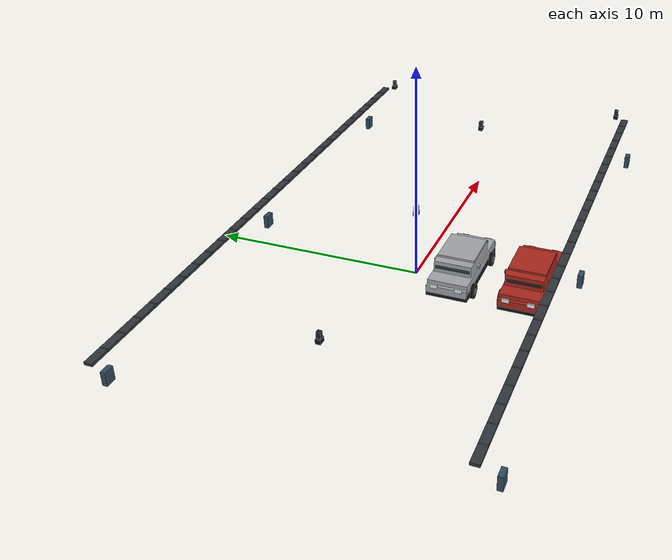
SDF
<sdf version="1.7">
 <world name="ev_car_carrier_deck_world">
  <model name="electrical_and_monitoring">
   <static>true</static>
   <link name="link">
    <collision name="cable_tray_-7.0_collision">
     <pose>0.0000 -7.0000 3.0500 0.0000 0.0000 0.0000</pose>
     <geometry><box><size>27.8 0.35 0.12</size></box></geometry>
    </collision>
    <visual name="cable_tray_-7.0_visual">
     <pose>0.0000 -7.0000 3.0500 0.0000 0.0000 0.0000</pose>
     <geometry><box><size>27.8 0.35 0.12</size></box></geometry>
     <material><ambient>0.2 0.22 0.24 1</ambient><diffuse>0.2 0.22 0.24 1</diffuse></material>
    </visual>
    <visual name="tray_rung_-7.0_-13_visual">
     <pose>-13.0000 -7.0000 3.1200 0.0000 0.0000 0.0000</pose>
     <geometry><box><size>0.035 0.33 0.04</size></box></geometry>
     <material><ambient>0.42 0.44 0.46 1</ambient><diffuse>0.42 0.44 0.46 1</diffuse></material>
    </visual>
    <visual name="tray_rung_-7.0_-12_visual">
     <pose>-12.0000 -7.0000 3.1200 0.0000 0.0000 0.0000</pose>
     <geometry><box><size>0.035 0.33 0.04</size></box></geometry>
     <material><ambient>0.42 0.44 0.46 1</ambient><diffuse>0.42 0.44 0.46 1</diffuse></material>
    </visual>
    <visual name="tray_rung_-7.0_-11_visual">
     <pose>-11.0000 -7.0000 3.1200 0.0000 0.0000 0.0000</pose>
     <geometry><box><size>0.035 0.33 0.04</size></box></geometry>
     <material><ambient>0.42 0.44 0.46 1</ambient><diffuse>0.42 0.44 0.46 1</diffuse></material>
    </visual>
    <visual name="tray_rung_-7.0_-10_visual">
     <pose>-10.0000 -7.0000 3.1200 0.0000 0.0000 0.0000</pose>
     <geometry><box><size>0.035 0.33 0.04</size></box></geometry>
     <material><ambient>0.42 0.44 0.46 1</ambient><diffuse>0.42 0.44 0.46 1</diffuse></material>
    </visual>
    <visual name="tray_rung_-7.0_-9_visual">
     <pose>-9.0000 -7.0000 3.1200 0.0000 0.0000 0.0000</pose>
     <geometry><box><size>0.035 0.33 0.04</size></box></geometry>
     <material><ambient>0.42 0.44 0.46 1</ambient><diffuse>0.42 0.44 0.46 1</diffuse></material>
    </visual>
    <visual name="tray_rung_-7.0_-8_visual">
     <pose>-8.0000 -7.0000 3.1200 0.0000 0.0000 0.0000</pose>
     <geometry><box><size>0.035 0.33 0.04</size></box></geometry>
     <material><ambient>0.42 0.44 0.46 1</ambient><diffuse>0.42 0.44 0.46 1</diffuse></material>
    </visual>
    <visual name="tray_rung_-7.0_-7_visual">
     <pose>-7.0000 -7.0000 3.1200 0.0000 0.0000 0.0000</pose>
     <geometry><box><size>0.035 0.33 0.04</size></box></geometry>
     <material><ambient>0.42 0.44 0.46 1</ambient><diffuse>0.42 0.44 0.46 1</diffuse></material>
    </visual>
    <visual name="tray_rung_-7.0_-6_visual">
     <pose>-6.0000 -7.0000 3.1200 0.0000 0.0000 0.0000</pose>
     <geometry><box><size>0.035 0.33 0.04</size></box></geometry>
     <material><ambient>0.42 0.44 0.46 1</ambient><diffuse>0.42 0.44 0.46 1</diffuse></material>
    </visual>
    <visual name="tray_rung_-7.0_-5_visual">
     <pose>-5.0000 -7.0000 3.1200 0.0000 0.0000 0.0000</pose>
     <geometry><box><size>0.035 0.33 0.04</size></box></geometry>
     <material><ambient>0.42 0.44 0.46 1</ambient><diffuse>0.42 0.44 0.46 1</diffuse></material>
    </visual>
    <visual name="tray_rung_-7.0_-4_visual">
     <pose>-4.0000 -7.0000 3.1200 0.0000 0.0000 0.0000</pose>
     <geometry><box><size>0.035 0.33 0.04</size></box></geometry>
     <material><ambient>0.42 0.44 0.46 1</ambient><diffuse>0.42 0.44 0.46 1</diffuse></material>
    </visual>
    <visual name="tray_rung_-7.0_-3_visual">
     <pose>-3.0000 -7.0000 3.1200 0.0000 0.0000 0.0000</pose>
     <geometry><box><size>0.035 0.33 0.04</size></box></geometry>
     <material><ambient>0.42 0.44 0.46 1</ambient><diffuse>0.42 0.44 0.46 1</diffuse></material>
    </visual>
    <visual name="tray_rung_-7.0_-2_visual">
     <pose>-2.0000 -7.0000 3.1200 0.0000 0.0000 0.0000</pose>
     <geometry><box><size>0.035 0.33 0.04</size></box></geometry>
     <material><ambient>0.42 0.44 0.46 1</ambient><diffuse>0.42 0.44 0.46 1</diffuse></material>
    </visual>
    <visual name="tray_rung_-7.0_-1_visual">
     <pose>-1.0000 -7.0000 3.1200 0.0000 0.0000 0.0000</pose>
     <geometry><box><size>0.035 0.33 0.04</size></box></geometry>
     <material><ambient>0.42 0.44 0.46 1</ambient><diffuse>0.42 0.44 0.46 1</diffuse></material>
    </visual>
    <visual name="tray_rung_-7.0_0_visual">
     <pose>0.0000 -7.0000 3.1200 0.0000 0.0000 0.0000</pose>
     <geometry><box><size>0.035 0.33 0.04</size></box></geometry>
     <material><ambient>0.42 0.44 0.46 1</ambient><diffuse>0.42 0.44 0.46 1</diffuse></material>
    </visual>
    <visual name="tray_rung_-7.0_1_visual">
     <pose>1.0000 -7.0000 3.1200 0.0000 0.0000 0.0000</pose>
     <geometry><box><size>0.035 0.33 0.04</size></box></geometry>
     <material><ambient>0.42 0.44 0.46 1</ambient><diffuse>0.42 0.44 0.46 1</diffuse></material>
    </visual>
    <visual name="tray_rung_-7.0_2_visual">
     <pose>2.0000 -7.0000 3.1200 0.0000 0.0000 0.0000</pose>
     <geometry><box><size>0.035 0.33 0.04</size></box></geometry>
     <material><ambient>0.42 0.44 0.46 1</ambient><diffuse>0.42 0.44 0.46 1</diffuse></material>
    </visual>
    <visual name="tray_rung_-7.0_3_visual">
     <pose>3.0000 -7.0000 3.1200 0.0000 0.0000 0.0000</pose>
     <geometry><box><size>0.035 0.33 0.04</size></box></geometry>
     <material><ambient>0.42 0.44 0.46 1</ambient><diffuse>0.42 0.44 0.46 1</diffuse></material>
    </visual>
    <visual name="tray_rung_-7.0_4_visual">
     <pose>4.0000 -7.0000 3.1200 0.0000 0.0000 0.0000</pose>
     <geometry><box><size>0.035 0.33 0.04</size></box></geometry>
     <material><ambient>0.42 0.44 0.46 1</ambient><diffuse>0.42 0.44 0.46 1</diffuse></material>
    </visual>
    <visual name="tray_rung_-7.0_5_visual">
     <pose>5.0000 -7.0000 3.1200 0.0000 0.0000 0.0000</pose>
     <geometry><box><size>0.035 0.33 0.04</size></box></geometry>
     <material><ambient>0.42 0.44 0.46 1</ambient><diffuse>0.42 0.44 0.46 1</diffuse></material>
    </visual>
    <visual name="tray_rung_-7.0_6_visual">
     <pose>6.0000 -7.0000 3.1200 0.0000 0.0000 0.0000</pose>
     <geometry><box><size>0.035 0.33 0.04</size></box></geometry>
     <material><ambient>0.42 0.44 0.46 1</ambient><diffuse>0.42 0.44 0.46 1</diffuse></material>
    </visual>
    <visual name="tray_rung_-7.0_7_visual">
     <pose>7.0000 -7.0000 3.1200 0.0000 0.0000 0.0000</pose>
     <geometry><box><size>0.035 0.33 0.04</size></box></geometry>
     <material><ambient>0.42 0.44 0.46 1</ambient><diffuse>0.42 0.44 0.46 1</diffuse></material>
    </visual>
    <visual name="tray_rung_-7.0_8_visual">
     <pose>8.0000 -7.0000 3.1200 0.0000 0.0000 0.0000</pose>
     <geometry><box><size>0.035 0.33 0.04</size></box></geometry>
     <material><ambient>0.42 0.44 0.46 1</ambient><diffuse>0.42 0.44 0.46 1</diffuse></material>
    </visual>
    <visual name="tray_rung_-7.0_9_visual">
     <pose>9.0000 -7.0000 3.1200 0.0000 0.0000 0.0000</pose>
     <geometry><box><size>0.035 0.33 0.04</size></box></geometry>
     <material><ambient>0.42 0.44 0.46 1</ambient><diffuse>0.42 0.44 0.46 1</diffuse></material>
    </visual>
    <visual name="tray_rung_-7.0_10_visual">
     <pose>10.0000 -7.0000 3.1200 0.0000 0.0000 0.0000</pose>
     <geometry><box><size>0.035 0.33 0.04</size></box></geometry>
     <material><ambient>0.42 0.44 0.46 1</ambient><diffuse>0.42 0.44 0.46 1</diffuse></material>
    </visual>
    <visual name="tray_rung_-7.0_11_visual">
     <pose>11.0000 -7.0000 3.1200 0.0000 0.0000 0.0000</pose>
     <geometry><box><size>0.035 0.33 0.04</size></box></geometry>
     <material><ambient>0.42 0.44 0.46 1</ambient><diffuse>0.42 0.44 0.46 1</diffuse></material>
    </visual>
    <visual name="tray_rung_-7.0_12_visual">
     <pose>12.0000 -7.0000 3.1200 0.0000 0.0000 0.0000</pose>
     <geometry><box><size>0.035 0.33 0.04</size></box></geometry>
     <material><ambient>0.42 0.44 0.46 1</ambient><diffuse>0.42 0.44 0.46 1</diffuse></material>
    </visual>
    <visual name="tray_rung_-7.0_13_visual">
     <pose>13.0000 -7.0000 3.1200 0.0000 0.0000 0.0000</pose>
     <geometry><box><size>0.035 0.33 0.04</size></box></geometry>
     <material><ambient>0.42 0.44 0.46 1</ambient><diffuse>0.42 0.44 0.46 1</diffuse></material>
    </visual>
    <collision name="cable_tray_7.0_collision">
     <pose>0.0000 7.0000 3.0500 0.0000 0.0000 0.0000</pose>
     <geometry><box><size>27.8 0.35 0.12</size></box></geometry>
    </collision>
    <visual name="cable_tray_7.0_visual">
     <pose>0.0000 7.0000 3.0500 0.0000 0.0000 0.0000</pose>
     <geometry><box><size>27.8 0.35 0.12</size></box></geometry>
     <material><ambient>0.2 0.22 0.24 1</ambient><diffuse>0.2 0.22 0.24 1</diffuse></material>
    </visual>
    <visual name="tray_rung_7.0_-13_visual">
     <pose>-13.0000 7.0000 3.1200 0.0000 0.0000 0.0000</pose>
     <geometry><box><size>0.035 0.33 0.04</size></box></geometry>
     <material><ambient>0.42 0.44 0.46 1</ambient><diffuse>0.42 0.44 0.46 1</diffuse></material>
    </visual>
    <visual name="tray_rung_7.0_-12_visual">
     <pose>-12.0000 7.0000 3.1200 0.0000 0.0000 0.0000</pose>
     <geometry><box><size>0.035 0.33 0.04</size></box></geometry>
     <material><ambient>0.42 0.44 0.46 1</ambient><diffuse>0.42 0.44 0.46 1</diffuse></material>
    </visual>
    <visual name="tray_rung_7.0_-11_visual">
     <pose>-11.0000 7.0000 3.1200 0.0000 0.0000 0.0000</pose>
     <geometry><box><size>0.035 0.33 0.04</size></box></geometry>
     <material><ambient>0.42 0.44 0.46 1</ambient><diffuse>0.42 0.44 0.46 1</diffuse></material>
    </visual>
    <visual name="tray_rung_7.0_-10_visual">
     <pose>-10.0000 7.0000 3.1200 0.0000 0.0000 0.0000</pose>
     <geometry><box><size>0.035 0.33 0.04</size></box></geometry>
     <material><ambient>0.42 0.44 0.46 1</ambient><diffuse>0.42 0.44 0.46 1</diffuse></material>
    </visual>
    <visual name="tray_rung_7.0_-9_visual">
     <pose>-9.0000 7.0000 3.1200 0.0000 0.0000 0.0000</pose>
     <geometry><box><size>0.035 0.33 0.04</size></box></geometry>
     <material><ambient>0.42 0.44 0.46 1</ambient><diffuse>0.42 0.44 0.46 1</diffuse></material>
    </visual>
    <visual name="tray_rung_7.0_-8_visual">
     <pose>-8.0000 7.0000 3.1200 0.0000 0.0000 0.0000</pose>
     <geometry><box><size>0.035 0.33 0.04</size></box></geometry>
     <material><ambient>0.42 0.44 0.46 1</ambient><diffuse>0.42 0.44 0.46 1</diffuse></material>
    </visual>
    <visual name="tray_rung_7.0_-7_visual">
     <pose>-7.0000 7.0000 3.1200 0.0000 0.0000 0.0000</pose>
     <geometry><box><size>0.035 0.33 0.04</size></box></geometry>
     <material><ambient>0.42 0.44 0.46 1</ambient><diffuse>0.42 0.44 0.46 1</diffuse></material>
    </visual>
    <visual name="tray_rung_7.0_-6_visual">
     <pose>-6.0000 7.0000 3.1200 0.0000 0.0000 0.0000</pose>
     <geometry><box><size>0.035 0.33 0.04</size></box></geometry>
     <material><ambient>0.42 0.44 0.46 1</ambient><diffuse>0.42 0.44 0.46 1</diffuse></material>
    </visual>
    <visual name="tray_rung_7.0_-5_visual">
     <pose>-5.0000 7.0000 3.1200 0.0000 0.0000 0.0000</pose>
     <geometry><box><size>0.035 0.33 0.04</size></box></geometry>
     <material><ambient>0.42 0.44 0.46 1</ambient><diffuse>0.42 0.44 0.46 1</diffuse></material>
    </visual>
    <visual name="tray_rung_7.0_-4_visual">
     <pose>-4.0000 7.0000 3.1200 0.0000 0.0000 0.0000</pose>
     <geometry><box><size>0.035 0.33 0.04</size></box></geometry>
     <material><ambient>0.42 0.44 0.46 1</ambient><diffuse>0.42 0.44 0.46 1</diffuse></material>
    </visual>
    <visual name="tray_rung_7.0_-3_visual">
     <pose>-3.0000 7.0000 3.1200 0.0000 0.0000 0.0000</pose>
     <geometry><box><size>0.035 0.33 0.04</size></box></geometry>
     <material><ambient>0.42 0.44 0.46 1</ambient><diffuse>0.42 0.44 0.46 1</diffuse></material>
    </visual>
    <visual name="tray_rung_7.0_-2_visual">
     <pose>-2.0000 7.0000 3.1200 0.0000 0.0000 0.0000</pose>
     <geometry><box><size>0.035 0.33 0.04</size></box></geometry>
     <material><ambient>0.42 0.44 0.46 1</ambient><diffuse>0.42 0.44 0.46 1</diffuse></material>
    </visual>
    <visual name="tray_rung_7.0_-1_visual">
     <pose>-1.0000 7.0000 3.1200 0.0000 0.0000 0.0000</pose>
     <geometry><box><size>0.035 0.33 0.04</size></box></geometry>
     <material><ambient>0.42 0.44 0.46 1</ambient><diffuse>0.42 0.44 0.46 1</diffuse></material>
    </visual>
    <visual name="tray_rung_7.0_0_visual">
     <pose>0.0000 7.0000 3.1200 0.0000 0.0000 0.0000</pose>
     <geometry><box><size>0.035 0.33 0.04</size></box></geometry>
     <material><ambient>0.42 0.44 0.46 1</ambient><diffuse>0.42 0.44 0.46 1</diffuse></material>
    </visual>
    <visual name="tray_rung_7.0_1_visual">
     <pose>1.0000 7.0000 3.1200 0.0000 0.0000 0.0000</pose>
     <geometry><box><size>0.035 0.33 0.04</size></box></geometry>
     <material><ambient>0.42 0.44 0.46 1</ambient><diffuse>0.42 0.44 0.46 1</diffuse></material>
    </visual>
    <visual name="tray_rung_7.0_2_visual">
     <pose>2.0000 7.0000 3.1200 0.0000 0.0000 0.0000</pose>
     <geometry><box><size>0.035 0.33 0.04</size></box></geometry>
     <material><ambient>0.42 0.44 0.46 1</ambient><diffuse>0.42 0.44 0.46 1</diffuse></material>
    </visual>
    <visual name="tray_rung_7.0_3_visual">
     <pose>3.0000 7.0000 3.1200 0.0000 0.0000 0.0000</pose>
     <geometry><box><size>0.035 0.33 0.04</size></box></geometry>
     <material><ambient>0.42 0.44 0.46 1</ambient><diffuse>0.42 0.44 0.46 1</diffuse></material>
    </visual>
    <visual name="tray_rung_7.0_4_visual">
     <pose>4.0000 7.0000 3.1200 0.0000 0.0000 0.0000</pose>
     <geometry><box><size>0.035 0.33 0.04</size></box></geometry>
     <material><ambient>0.42 0.44 0.46 1</ambient><diffuse>0.42 0.44 0.46 1</diffuse></material>
    </visual>
    <visual name="tray_rung_7.0_5_visual">
     <pose>5.0000 7.0000 3.1200 0.0000 0.0000 0.0000</pose>
     <geometry><box><size>0.035 0.33 0.04</size></box></geometry>
     <material><ambient>0.42 0.44 0.46 1</ambient><diffuse>0.42 0.44 0.46 1</diffuse></material>
    </visual>
    <visual name="tray_rung_7.0_6_visual">
     <pose>6.0000 7.0000 3.1200 0.0000 0.0000 0.0000</pose>
     <geometry><box><size>0.035 0.33 0.04</size></box></geometry>
     <material><ambient>0.42 0.44 0.46 1</ambient><diffuse>0.42 0.44 0.46 1</diffuse></material>
    </visual>
    <visual name="tray_rung_7.0_7_visual">
     <pose>7.0000 7.0000 3.1200 0.0000 0.0000 0.0000</pose>
     <geometry><box><size>0.035 0.33 0.04</size></box></geometry>
     <material><ambient>0.42 0.44 0.46 1</ambient><diffuse>0.42 0.44 0.46 1</diffuse></material>
    </visual>
    <visual name="tray_rung_7.0_8_visual">
     <pose>8.0000 7.0000 3.1200 0.0000 0.0000 0.0000</pose>
     <geometry><box><size>0.035 0.33 0.04</size></box></geometry>
     <material><ambient>0.42 0.44 0.46 1</ambient><diffuse>0.42 0.44 0.46 1</diffuse></material>
    </visual>
    <visual name="tray_rung_7.0_9_visual">
     <pose>9.0000 7.0000 3.1200 0.0000 0.0000 0.0000</pose>
     <geometry><box><size>0.035 0.33 0.04</size></box></geometry>
     <material><ambient>0.42 0.44 0.46 1</ambient><diffuse>0.42 0.44 0.46 1</diffuse></material>
    </visual>
    <visual name="tray_rung_7.0_10_visual">
     <pose>10.0000 7.0000 3.1200 0.0000 0.0000 0.0000</pose>
     <geometry><box><size>0.035 0.33 0.04</size></box></geometry>
     <material><ambient>0.42 0.44 0.46 1</ambient><diffuse>0.42 0.44 0.46 1</diffuse></material>
    </visual>
    <visual name="tray_rung_7.0_11_visual">
     <pose>11.0000 7.0000 3.1200 0.0000 0.0000 0.0000</pose>
     <geometry><box><size>0.035 0.33 0.04</size></box></geometry>
     <material><ambient>0.42 0.44 0.46 1</ambient><diffuse>0.42 0.44 0.46 1</diffuse></material>
    </visual>
    <visual name="tray_rung_7.0_12_visual">
     <pose>12.0000 7.0000 3.1200 0.0000 0.0000 0.0000</pose>
     <geometry><box><size>0.035 0.33 0.04</size></box></geometry>
     <material><ambient>0.42 0.44 0.46 1</ambient><diffuse>0.42 0.44 0.46 1</diffuse></material>
    </visual>
    <visual name="tray_rung_7.0_13_visual">
     <pose>13.0000 7.0000 3.1200 0.0000 0.0000 0.0000</pose>
     <geometry><box><size>0.035 0.33 0.04</size></box></geometry>
     <material><ambient>0.42 0.44 0.46 1</ambient><diffuse>0.42 0.44 0.46 1</diffuse></material>
    </visual>
    <collision name="junction_box_-12.5_7.55_collision">
     <pose>-12.5000 7.5500 1.3500 0.0000 0.0000 0.0000</pose>
     <geometry><box><size>0.48 0.22 0.62</size></box></geometry>
    </collision>
    <visual name="junction_box_-12.5_7.55_visual">
     <pose>-12.5000 7.5500 1.3500 0.0000 0.0000 0.0000</pose>
     <geometry><box><size>0.48 0.22 0.62</size></box></geometry>
     <material><ambient>0.2 0.3 0.38 1</ambient><diffuse>0.2 0.3 0.38 1</diffuse></material>
    </visual>
    <collision name="junction_box_0_7.55_collision">
     <pose>0.0000 7.5500 1.3500 0.0000 0.0000 0.0000</pose>
     <geometry><box><size>0.48 0.22 0.62</size></box></geometry>
    </collision>
    <visual name="junction_box_0_7.55_visual">
     <pose>0.0000 7.5500 1.3500 0.0000 0.0000 0.0000</pose>
     <geometry><box><size>0.48 0.22 0.62</size></box></geometry>
     <material><ambient>0.2 0.3 0.38 1</ambient><diffuse>0.2 0.3 0.38 1</diffuse></material>
    </visual>
    <collision name="junction_box_12.5_7.55_collision">
     <pose>12.5000 7.5500 1.3500 0.0000 0.0000 0.0000</pose>
     <geometry><box><size>0.48 0.22 0.62</size></box></geometry>
    </collision>
    <visual name="junction_box_12.5_7.55_visual">
     <pose>12.5000 7.5500 1.3500 0.0000 0.0000 0.0000</pose>
     <geometry><box><size>0.48 0.22 0.62</size></box></geometry>
     <material><ambient>0.2 0.3 0.38 1</ambient><diffuse>0.2 0.3 0.38 1</diffuse></material>
    </visual>
    <collision name="junction_box_-12.5_-7.55_collision">
     <pose>-12.5000 -7.5500 1.3500 0.0000 0.0000 0.0000</pose>
     <geometry><box><size>0.48 0.22 0.62</size></box></geometry>
    </collision>
    <visual name="junction_box_-12.5_-7.55_visual">
     <pose>-12.5000 -7.5500 1.3500 0.0000 0.0000 0.0000</pose>
     <geometry><box><size>0.48 0.22 0.62</size></box></geometry>
     <material><ambient>0.2 0.3 0.38 1</ambient><diffuse>0.2 0.3 0.38 1</diffuse></material>
    </visual>
    <collision name="junction_box_0_-7.55_collision">
     <pose>0.0000 -7.5500 1.3500 0.0000 0.0000 0.0000</pose>
     <geometry><box><size>0.48 0.22 0.62</size></box></geometry>
    </collision>
    <visual name="junction_box_0_-7.55_visual">
     <pose>0.0000 -7.5500 1.3500 0.0000 0.0000 0.0000</pose>
     <geometry><box><size>0.48 0.22 0.62</size></box></geometry>
     <material><ambient>0.2 0.3 0.38 1</ambient><diffuse>0.2 0.3 0.38 1</diffuse></material>
    </visual>
    <collision name="junction_box_12.5_-7.55_collision">
     <pose>12.5000 -7.5500 1.3500 0.0000 0.0000 0.0000</pose>
     <geometry><box><size>0.48 0.22 0.62</size></box></geometry>
    </collision>
    <visual name="junction_box_12.5_-7.55_visual">
     <pose>12.5000 -7.5500 1.3500 0.0000 0.0000 0.0000</pose>
     <geometry><box><size>0.48 0.22 0.62</size></box></geometry>
     <material><ambient>0.2 0.3 0.38 1</ambient><diffuse>0.2 0.3 0.38 1</diffuse></material>
    </visual>
    <collision name="camera_mount_0_collision">
     <pose>-10.0000 0.0000 3.3800 0.0000 0.0000 0.0000</pose>
     <geometry><box><size>0.18 0.18 0.35</size></box></geometry>
    </collision>
    <visual name="camera_mount_0_visual">
     <pose>-10.0000 0.0000 3.3800 0.0000 0.0000 0.0000</pose>
     <geometry><box><size>0.18 0.18 0.35</size></box></geometry>
     <material><ambient>0.12 0.13 0.15 1</ambient><diffuse>0.12 0.13 0.15 1</diffuse></material>
    </visual>
    <collision name="camera_head_0_collision">
     <pose>-10.0000 0.0000 3.1800 0.0000 0.0000 0.0000</pose>
     <geometry><box><size>0.3 0.22 0.2</size></box></geometry>
    </collision>
    <visual name="camera_head_0_visual">
     <pose>-10.0000 0.0000 3.1800 0.0000 0.0000 0.0000</pose>
     <geometry><box><size>0.3 0.22 0.2</size></box></geometry>
     <material><ambient>0.06 0.07 0.08 1</ambient><diffuse>0.06 0.07 0.08 1</diffuse></material>
    </visual>
    <collision name="camera_mount_1_collision">
     <pose>0.0000 0.0000 3.3800 0.0000 0.0000 0.0000</pose>
     <geometry><box><size>0.18 0.18 0.35</size></box></geometry>
    </collision>
    <visual name="camera_mount_1_visual">
     <pose>0.0000 0.0000 3.3800 0.0000 0.0000 0.0000</pose>
     <geometry><box><size>0.18 0.18 0.35</size></box></geometry>
     <material><ambient>0.12 0.13 0.15 1</ambient><diffuse>0.12 0.13 0.15 1</diffuse></material>
    </visual>
    <collision name="camera_head_1_collision">
     <pose>0.0000 0.0000 3.1800 0.0000 0.0000 0.0000</pose>
     <geometry><box><size>0.3 0.22 0.2</size></box></geometry>
    </collision>
    <visual name="camera_head_1_visual">
     <pose>0.0000 0.0000 3.1800 0.0000 0.0000 0.0000</pose>
     <geometry><box><size>0.3 0.22 0.2</size></box></geometry>
     <material><ambient>0.06 0.07 0.08 1</ambient><diffuse>0.06 0.07 0.08 1</diffuse></material>
    </visual>
    <collision name="camera_mount_2_collision">
     <pose>10.0000 0.0000 3.3800 0.0000 0.0000 0.0000</pose>
     <geometry><box><size>0.18 0.18 0.35</size></box></geometry>
    </collision>
    <visual name="camera_mount_2_visual">
     <pose>10.0000 0.0000 3.3800 0.0000 0.0000 0.0000</pose>
     <geometry><box><size>0.18 0.18 0.35</size></box></geometry>
     <material><ambient>0.12 0.13 0.15 1</ambient><diffuse>0.12 0.13 0.15 1</diffuse></material>
    </visual>
    <collision name="camera_head_2_collision">
     <pose>10.0000 0.0000 3.1800 0.0000 0.0000 3.1416</pose>
     <geometry><box><size>0.3 0.22 0.2</size></box></geometry>
    </collision>
    <visual name="camera_head_2_visual">
     <pose>10.0000 0.0000 3.1800 0.0000 0.0000 3.1416</pose>
     <geometry><box><size>0.3 0.22 0.2</size></box></geometry>
     <material><ambient>0.06 0.07 0.08 1</ambient><diffuse>0.06 0.07 0.08 1</diffuse></material>
    </visual>
    <collision name="camera_mount_3_collision">
     <pose>14.0000 6.5000 3.3800 0.0000 0.0000 0.0000</pose>
     <geometry><box><size>0.18 0.18 0.35</size></box></geometry>
    </collision>
    <visual name="camera_mount_3_visual">
     <pose>14.0000 6.5000 3.3800 0.0000 0.0000 0.0000</pose>
     <geometry><box><size>0.18 0.18 0.35</size></box></geometry>
     <material><ambient>0.12 0.13 0.15 1</ambient><diffuse>0.12 0.13 0.15 1</diffuse></material>
    </visual>
    <collision name="camera_head_3_collision">
     <pose>14.0000 6.5000 3.1800 0.0000 0.0000 3.1416</pose>
     <geometry><box><size>0.3 0.22 0.2</size></box></geometry>
    </collision>
    <visual name="camera_head_3_visual">
     <pose>14.0000 6.5000 3.1800 0.0000 0.0000 3.1416</pose>
     <geometry><box><size>0.3 0.22 0.2</size></box></geometry>
     <material><ambient>0.06 0.07 0.08 1</ambient><diffuse>0.06 0.07 0.08 1</diffuse></material>
    </visual>
    <collision name="camera_mount_4_collision">
     <pose>14.0000 -6.5000 3.3800 0.0000 0.0000 0.0000</pose>
     <geometry><box><size>0.18 0.18 0.35</size></box></geometry>
    </collision>
    <visual name="camera_mount_4_visual">
     <pose>14.0000 -6.5000 3.3800 0.0000 0.0000 0.0000</pose>
     <geometry><box><size>0.18 0.18 0.35</size></box></geometry>
     <material><ambient>0.12 0.13 0.15 1</ambient><diffuse>0.12 0.13 0.15 1</diffuse></material>
    </visual>
    <collision name="camera_head_4_collision">
     <pose>14.0000 -6.5000 3.1800 0.0000 0.0000 3.1416</pose>
     <geometry><box><size>0.3 0.22 0.2</size></box></geometry>
    </collision>
    <visual name="camera_head_4_visual">
     <pose>14.0000 -6.5000 3.1800 0.0000 0.0000 3.1416</pose>
     <geometry><box><size>0.3 0.22 0.2</size></box></geometry>
     <material><ambient>0.06 0.07 0.08 1</ambient><diffuse>0.06 0.07 0.08 1</diffuse></material>
    </visual>
   </link>
  </model>
  <model name="ev_03">
   <static>true</static>
   <pose>0.0000 -5.4000 0.2000 0.0000 0.0000 0.0000</pose>
   <link name="vehicle">
    <collision name="chassis_collision">
     <pose>0.0000 0.0000 0.4800 0.0000 0.0000 0.0000</pose>
     <geometry><box><size>4.45 1.86 0.32</size></box></geometry>
    </collision>
    <visual name="chassis_visual">
     <pose>0.0000 0.0000 0.4800 0.0000 0.0000 0.0000</pose>
     <geometry><box><size>4.45 1.86 0.32</size></box></geometry>
     <material><ambient>0.08 0.08 0.09 1</ambient><diffuse>0.08 0.08 0.09 1</diffuse></material>
    </visual>
    <collision name="lower_body_collision">
     <pose>0.0000 0.0000 0.7800 0.0000 0.0000 0.0000</pose>
     <geometry><box><size>4.25 1.82 0.55</size></box></geometry>
    </collision>
    <visual name="lower_body_visual">
     <pose>0.0000 0.0000 0.7800 0.0000 0.0000 0.0000</pose>
     <geometry><box><size>4.25 1.82 0.55</size></box></geometry>
     <material><ambient>0.68 0.16 0.12 1</ambient><diffuse>0.68 0.16 0.12 1</diffuse></material>
    </visual>
    <collision name="cabin_collision">
     <pose>-0.1500 0.0000 1.2500 0.0000 0.0000 0.0000</pose>
     <geometry><box><size>2.5 1.7 0.65</size></box></geometry>
    </collision>
    <visual name="cabin_visual">
     <pose>-0.1500 0.0000 1.2500 0.0000 0.0000 0.0000</pose>
     <geometry><box><size>2.5 1.7 0.65</size></box></geometry>
     <material><ambient>0.68 0.16 0.12 1</ambient><diffuse>0.68 0.16 0.12 1</diffuse></material>
    </visual>
    <visual name="windshield_visual">
     <pose>-1.0500 0.0000 1.3000 0.0000 -0.4000 0.0000</pose>
     <geometry><box><size>0.7 1.56 0.42</size></box></geometry>
     <material><ambient>0.1 0.17 0.22 0.75</ambient><diffuse>0.1 0.17 0.22 0.75</diffuse></material>
    </visual>
    <visual name="rear_glass_visual">
     <pose>1.1000 0.0000 1.2800 0.0000 0.3800 0.0000</pose>
     <geometry><box><size>0.55 1.56 0.4</size></box></geometry>
     <material><ambient>0.1 0.17 0.22 0.75</ambient><diffuse>0.1 0.17 0.22 0.75</diffuse></material>
    </visual>
    <collision name="roof_collision">
     <pose>0.0000 0.0000 1.6200 0.0000 0.0000 0.0000</pose>
     <geometry><box><size>1.95 1.68 0.1</size></box></geometry>
    </collision>
    <visual name="roof_visual">
     <pose>0.0000 0.0000 1.6200 0.0000 0.0000 0.0000</pose>
     <geometry><box><size>1.95 1.68 0.1</size></box></geometry>
     <material><ambient>0.68 0.16 0.12 1</ambient><diffuse>0.68 0.16 0.12 1</diffuse></material>
    </visual>
    <collision name="battery_pack_collision">
     <pose>0.1000 0.0000 0.3000 0.0000 0.0000 0.0000</pose>
     <geometry><box><size>2.75 1.45 0.16</size></box></geometry>
    </collision>
    <visual name="battery_pack_visual">
     <pose>0.1000 0.0000 0.3000 0.0000 0.0000 0.0000</pose>
     <geometry><box><size>2.75 1.45 0.16</size></box></geometry>
     <material><ambient>0.16 0.18 0.19 1</ambient><diffuse>0.16 0.18 0.19 1</diffuse></material>
    </visual>
    <collision name="front_bumper_collision">
     <pose>-2.2200 0.0000 0.7000 0.0000 0.0000 0.0000</pose>
     <geometry><box><size>0.16 1.82 0.34</size></box></geometry>
    </collision>
    <visual name="front_bumper_visual">
     <pose>-2.2200 0.0000 0.7000 0.0000 0.0000 0.0000</pose>
     <geometry><box><size>0.16 1.82 0.34</size></box></geometry>
     <material><ambient>0.68 0.16 0.12 1</ambient><diffuse>0.68 0.16 0.12 1</diffuse></material>
    </visual>
    <collision name="rear_bumper_collision">
     <pose>2.2200 0.0000 0.7000 0.0000 0.0000 0.0000</pose>
     <geometry><box><size>0.16 1.82 0.34</size></box></geometry>
    </collision>
    <visual name="rear_bumper_visual">
     <pose>2.2200 0.0000 0.7000 0.0000 0.0000 0.0000</pose>
     <geometry><box><size>0.16 1.82 0.34</size></box></geometry>
     <material><ambient>0.68 0.16 0.12 1</ambient><diffuse>0.68 0.16 0.12 1</diffuse></material>
    </visual>
    <collision name="wheel_0_0_collision">
     <pose>-1.4200 -0.9600 0.4300 1.5708 0.0000 0.0000</pose>
     <geometry><cylinder><radius>0.33</radius><length>0.2</length></cylinder></geometry>
    </collision>
    <visual name="wheel_0_0_visual">
     <pose>-1.4200 -0.9600 0.4300 1.5708 0.0000 0.0000</pose>
     <geometry><cylinder><radius>0.33</radius><length>0.2</length></cylinder></geometry>
     <material><ambient>0.035 0.035 0.035 1</ambient><diffuse>0.035 0.035 0.035 1</diffuse></material>
    </visual>
    <visual name="rim_0_0_visual">
     <pose>-1.4200 -0.9600 0.4300 1.5708 0.0000 0.0000</pose>
     <geometry><cylinder><radius>0.18</radius><length>0.205</length></cylinder></geometry>
     <material><ambient>0.45 0.47 0.5 1</ambient><diffuse>0.45 0.47 0.5 1</diffuse></material>
    </visual>
    <collision name="wheel_0_1_collision">
     <pose>-1.4200 0.9600 0.4300 1.5708 0.0000 0.0000</pose>
     <geometry><cylinder><radius>0.33</radius><length>0.2</length></cylinder></geometry>
    </collision>
    <visual name="wheel_0_1_visual">
     <pose>-1.4200 0.9600 0.4300 1.5708 0.0000 0.0000</pose>
     <geometry><cylinder><radius>0.33</radius><length>0.2</length></cylinder></geometry>
     <material><ambient>0.035 0.035 0.035 1</ambient><diffuse>0.035 0.035 0.035 1</diffuse></material>
    </visual>
    <visual name="rim_0_1_visual">
     <pose>-1.4200 0.9600 0.4300 1.5708 0.0000 0.0000</pose>
     <geometry><cylinder><radius>0.18</radius><length>0.205</length></cylinder></geometry>
     <material><ambient>0.45 0.47 0.5 1</ambient><diffuse>0.45 0.47 0.5 1</diffuse></material>
    </visual>
    <collision name="wheel_1_0_collision">
     <pose>1.4200 -0.9600 0.4300 1.5708 0.0000 0.0000</pose>
     <geometry><cylinder><radius>0.33</radius><length>0.2</length></cylinder></geometry>
    </collision>
    <visual name="wheel_1_0_visual">
     <pose>1.4200 -0.9600 0.4300 1.5708 0.0000 0.0000</pose>
     <geometry><cylinder><radius>0.33</radius><length>0.2</length></cylinder></geometry>
     <material><ambient>0.035 0.035 0.035 1</ambient><diffuse>0.035 0.035 0.035 1</diffuse></material>
    </visual>
    <visual name="rim_1_0_visual">
     <pose>1.4200 -0.9600 0.4300 1.5708 0.0000 0.0000</pose>
     <geometry><cylinder><radius>0.18</radius><length>0.205</length></cylinder></geometry>
     <material><ambient>0.45 0.47 0.5 1</ambient><diffuse>0.45 0.47 0.5 1</diffuse></material>
    </visual>
    <collision name="wheel_1_1_collision">
     <pose>1.4200 0.9600 0.4300 1.5708 0.0000 0.0000</pose>
     <geometry><cylinder><radius>0.33</radius><length>0.2</length></cylinder></geometry>
    </collision>
    <visual name="wheel_1_1_visual">
     <pose>1.4200 0.9600 0.4300 1.5708 0.0000 0.0000</pose>
     <geometry><cylinder><radius>0.33</radius><length>0.2</length></cylinder></geometry>
     <material><ambient>0.035 0.035 0.035 1</ambient><diffuse>0.035 0.035 0.035 1</diffuse></material>
    </visual>
    <visual name="rim_1_1_visual">
     <pose>1.4200 0.9600 0.4300 1.5708 0.0000 0.0000</pose>
     <geometry><cylinder><radius>0.18</radius><length>0.205</length></cylinder></geometry>
     <material><ambient>0.45 0.47 0.5 1</ambient><diffuse>0.45 0.47 0.5 1</diffuse></material>
    </visual>
    <visual name="headlight_l_visual">
     <pose>-2.3100 -0.5500 0.8800 0.0000 0.0000 0.0000</pose>
     <geometry><box><size>0.06 0.32 0.18</size></box></geometry>
     <material><ambient>0.9 0.95 1.0 1</ambient><diffuse>0.9 0.95 1.0 1</diffuse></material>
    </visual>
    <visual name="headlight_r_visual">
     <pose>-2.3100 0.5500 0.8800 0.0000 0.0000 0.0000</pose>
     <geometry><box><size>0.06 0.32 0.18</size></box></geometry>
     <material><ambient>0.9 0.95 1.0 1</ambient><diffuse>0.9 0.95 1.0 1</diffuse></material>
    </visual>
    <visual name="taillight_l_visual">
     <pose>2.3100 -0.5500 0.8600 0.0000 0.0000 0.0000</pose>
     <geometry><box><size>0.06 0.32 0.17</size></box></geometry>
     <material><ambient>0.75 0.03 0.03 1</ambient><diffuse>0.75 0.03 0.03 1</diffuse></material>
    </visual>
    <visual name="taillight_r_visual">
     <pose>2.3100 0.5500 0.8600 0.0000 0.0000 0.0000</pose>
     <geometry><box><size>0.06 0.32 0.17</size></box></geometry>
     <material><ambient>0.75 0.03 0.03 1</ambient><diffuse>0.75 0.03 0.03 1</diffuse></material>
    </visual>
    <collision name="mirror_l_collision">
     <pose>-0.7200 -0.9800 1.3000 0.0000 0.0000 0.0000</pose>
     <geometry><box><size>0.22 0.1 0.12</size></box></geometry>
    </collision>
    <visual name="mirror_l_visual">
     <pose>-0.7200 -0.9800 1.3000 0.0000 0.0000 0.0000</pose>
     <geometry><box><size>0.22 0.1 0.12</size></box></geometry>
     <material><ambient>0.68 0.16 0.12 1</ambient><diffuse>0.68 0.16 0.12 1</diffuse></material>
    </visual>
    <collision name="mirror_r_collision">
     <pose>-0.7200 0.9800 1.3000 0.0000 0.0000 0.0000</pose>
     <geometry><box><size>0.22 0.1 0.12</size></box></geometry>
    </collision>
    <visual name="mirror_r_visual">
     <pose>-0.7200 0.9800 1.3000 0.0000 0.0000 0.0000</pose>
     <geometry><box><size>0.22 0.1 0.12</size></box></geometry>
     <material><ambient>0.68 0.16 0.12 1</ambient><diffuse>0.68 0.16 0.12 1</diffuse></material>
    </visual>
   </link>
  </model>
  <model name="ev_08">
   <static>true</static>
   <pose>0.0000 -2.2000 0.2000 0.0000 0.0000 0.0000</pose>
   <link name="vehicle">
    <collision name="chassis_collision">
     <pose>0.0000 0.0000 0.4800 0.0000 0.0000 0.0000</pose>
     <geometry><box><size>4.45 1.86 0.32</size></box></geometry>
    </collision>
    <visual name="chassis_visual">
     <pose>0.0000 0.0000 0.4800 0.0000 0.0000 0.0000</pose>
     <geometry><box><size>4.45 1.86 0.32</size></box></geometry>
     <material><ambient>0.08 0.08 0.09 1</ambient><diffuse>0.08 0.08 0.09 1</diffuse></material>
    </visual>
    <collision name="lower_body_collision">
     <pose>0.0000 0.0000 0.7800 0.0000 0.0000 0.0000</pose>
     <geometry><box><size>4.25 1.82 0.55</size></box></geometry>
    </collision>
    <visual name="lower_body_visual">
     <pose>0.0000 0.0000 0.7800 0.0000 0.0000 0.0000</pose>
     <geometry><box><size>4.25 1.82 0.55</size></box></geometry>
     <material><ambient>0.65 0.66 0.68 1</ambient><diffuse>0.65 0.66 0.68 1</diffuse></material>
    </visual>
    <collision name="cabin_collision">
     <pose>-0.1500 0.0000 1.2500 0.0000 0.0000 0.0000</pose>
     <geometry><box><size>2.5 1.7 0.65</size></box></geometry>
    </collision>
    <visual name="cabin_visual">
     <pose>-0.1500 0.0000 1.2500 0.0000 0.0000 0.0000</pose>
     <geometry><box><size>2.5 1.7 0.65</size></box></geometry>
     <material><ambient>0.65 0.66 0.68 1</ambient><diffuse>0.65 0.66 0.68 1</diffuse></material>
    </visual>
    <visual name="windshield_visual">
     <pose>-1.0500 0.0000 1.3000 0.0000 -0.4000 0.0000</pose>
     <geometry><box><size>0.7 1.56 0.42</size></box></geometry>
     <material><ambient>0.1 0.17 0.22 0.75</ambient><diffuse>0.1 0.17 0.22 0.75</diffuse></material>
    </visual>
    <visual name="rear_glass_visual">
     <pose>1.1000 0.0000 1.2800 0.0000 0.3800 0.0000</pose>
     <geometry><box><size>0.55 1.56 0.4</size></box></geometry>
     <material><ambient>0.1 0.17 0.22 0.75</ambient><diffuse>0.1 0.17 0.22 0.75</diffuse></material>
    </visual>
    <collision name="roof_collision">
     <pose>0.0000 0.0000 1.6200 0.0000 0.0000 0.0000</pose>
     <geometry><box><size>1.95 1.68 0.1</size></box></geometry>
    </collision>
    <visual name="roof_visual">
     <pose>0.0000 0.0000 1.6200 0.0000 0.0000 0.0000</pose>
     <geometry><box><size>1.95 1.68 0.1</size></box></geometry>
     <material><ambient>0.65 0.66 0.68 1</ambient><diffuse>0.65 0.66 0.68 1</diffuse></material>
    </visual>
    <collision name="battery_pack_collision">
     <pose>0.1000 0.0000 0.3000 0.0000 0.0000 0.0000</pose>
     <geometry><box><size>2.75 1.45 0.16</size></box></geometry>
    </collision>
    <visual name="battery_pack_visual">
     <pose>0.1000 0.0000 0.3000 0.0000 0.0000 0.0000</pose>
     <geometry><box><size>2.75 1.45 0.16</size></box></geometry>
     <material><ambient>0.16 0.18 0.19 1</ambient><diffuse>0.16 0.18 0.19 1</diffuse></material>
    </visual>
    <collision name="front_bumper_collision">
     <pose>-2.2200 0.0000 0.7000 0.0000 0.0000 0.0000</pose>
     <geometry><box><size>0.16 1.82 0.34</size></box></geometry>
    </collision>
    <visual name="front_bumper_visual">
     <pose>-2.2200 0.0000 0.7000 0.0000 0.0000 0.0000</pose>
     <geometry><box><size>0.16 1.82 0.34</size></box></geometry>
     <material><ambient>0.65 0.66 0.68 1</ambient><diffuse>0.65 0.66 0.68 1</diffuse></material>
    </visual>
    <collision name="rear_bumper_collision">
     <pose>2.2200 0.0000 0.7000 0.0000 0.0000 0.0000</pose>
     <geometry><box><size>0.16 1.82 0.34</size></box></geometry>
    </collision>
    <visual name="rear_bumper_visual">
     <pose>2.2200 0.0000 0.7000 0.0000 0.0000 0.0000</pose>
     <geometry><box><size>0.16 1.82 0.34</size></box></geometry>
     <material><ambient>0.65 0.66 0.68 1</ambient><diffuse>0.65 0.66 0.68 1</diffuse></material>
    </visual>
    <collision name="wheel_0_0_collision">
     <pose>-1.4200 -0.9600 0.4300 1.5708 0.0000 0.0000</pose>
     <geometry><cylinder><radius>0.33</radius><length>0.2</length></cylinder></geometry>
    </collision>
    <visual name="wheel_0_0_visual">
     <pose>-1.4200 -0.9600 0.4300 1.5708 0.0000 0.0000</pose>
     <geometry><cylinder><radius>0.33</radius><length>0.2</length></cylinder></geometry>
     <material><ambient>0.035 0.035 0.035 1</ambient><diffuse>0.035 0.035 0.035 1</diffuse></material>
    </visual>
    <visual name="rim_0_0_visual">
     <pose>-1.4200 -0.9600 0.4300 1.5708 0.0000 0.0000</pose>
     <geometry><cylinder><radius>0.18</radius><length>0.205</length></cylinder></geometry>
     <material><ambient>0.45 0.47 0.5 1</ambient><diffuse>0.45 0.47 0.5 1</diffuse></material>
    </visual>
    <collision name="wheel_0_1_collision">
     <pose>-1.4200 0.9600 0.4300 1.5708 0.0000 0.0000</pose>
     <geometry><cylinder><radius>0.33</radius><length>0.2</length></cylinder></geometry>
    </collision>
    <visual name="wheel_0_1_visual">
     <pose>-1.4200 0.9600 0.4300 1.5708 0.0000 0.0000</pose>
     <geometry><cylinder><radius>0.33</radius><length>0.2</length></cylinder></geometry>
     <material><ambient>0.035 0.035 0.035 1</ambient><diffuse>0.035 0.035 0.035 1</diffuse></material>
    </visual>
    <visual name="rim_0_1_visual">
     <pose>-1.4200 0.9600 0.4300 1.5708 0.0000 0.0000</pose>
     <geometry><cylinder><radius>0.18</radius><length>0.205</length></cylinder></geometry>
     <material><ambient>0.45 0.47 0.5 1</ambient><diffuse>0.45 0.47 0.5 1</diffuse></material>
    </visual>
    <collision name="wheel_1_0_collision">
     <pose>1.4200 -0.9600 0.4300 1.5708 0.0000 0.0000</pose>
     <geometry><cylinder><radius>0.33</radius><length>0.2</length></cylinder></geometry>
    </collision>
    <visual name="wheel_1_0_visual">
     <pose>1.4200 -0.9600 0.4300 1.5708 0.0000 0.0000</pose>
     <geometry><cylinder><radius>0.33</radius><length>0.2</length></cylinder></geometry>
     <material><ambient>0.035 0.035 0.035 1</ambient><diffuse>0.035 0.035 0.035 1</diffuse></material>
    </visual>
    <visual name="rim_1_0_visual">
     <pose>1.4200 -0.9600 0.4300 1.5708 0.0000 0.0000</pose>
     <geometry><cylinder><radius>0.18</radius><length>0.205</length></cylinder></geometry>
     <material><ambient>0.45 0.47 0.5 1</ambient><diffuse>0.45 0.47 0.5 1</diffuse></material>
    </visual>
    <collision name="wheel_1_1_collision">
     <pose>1.4200 0.9600 0.4300 1.5708 0.0000 0.0000</pose>
     <geometry><cylinder><radius>0.33</radius><length>0.2</length></cylinder></geometry>
    </collision>
    <visual name="wheel_1_1_visual">
     <pose>1.4200 0.9600 0.4300 1.5708 0.0000 0.0000</pose>
     <geometry><cylinder><radius>0.33</radius><length>0.2</length></cylinder></geometry>
     <material><ambient>0.035 0.035 0.035 1</ambient><diffuse>0.035 0.035 0.035 1</diffuse></material>
    </visual>
    <visual name="rim_1_1_visual">
     <pose>1.4200 0.9600 0.4300 1.5708 0.0000 0.0000</pose>
     <geometry><cylinder><radius>0.18</radius><length>0.205</length></cylinder></geometry>
     <material><ambient>0.45 0.47 0.5 1</ambient><diffuse>0.45 0.47 0.5 1</diffuse></material>
    </visual>
    <visual name="headlight_l_visual">
     <pose>-2.3100 -0.5500 0.8800 0.0000 0.0000 0.0000</pose>
     <geometry><box><size>0.06 0.32 0.18</size></box></geometry>
     <material><ambient>0.9 0.95 1.0 1</ambient><diffuse>0.9 0.95 1.0 1</diffuse></material>
    </visual>
    <visual name="headlight_r_visual">
     <pose>-2.3100 0.5500 0.8800 0.0000 0.0000 0.0000</pose>
     <geometry><box><size>0.06 0.32 0.18</size></box></geometry>
     <material><ambient>0.9 0.95 1.0 1</ambient><diffuse>0.9 0.95 1.0 1</diffuse></material>
    </visual>
    <visual name="taillight_l_visual">
     <pose>2.3100 -0.5500 0.8600 0.0000 0.0000 0.0000</pose>
     <geometry><box><size>0.06 0.32 0.17</size></box></geometry>
     <material><ambient>0.75 0.03 0.03 1</ambient><diffuse>0.75 0.03 0.03 1</diffuse></material>
    </visual>
    <visual name="taillight_r_visual">
     <pose>2.3100 0.5500 0.8600 0.0000 0.0000 0.0000</pose>
     <geometry><box><size>0.06 0.32 0.17</size></box></geometry>
     <material><ambient>0.75 0.03 0.03 1</ambient><diffuse>0.75 0.03 0.03 1</diffuse></material>
    </visual>
    <collision name="mirror_l_collision">
     <pose>-0.7200 -0.9800 1.3000 0.0000 0.0000 0.0000</pose>
     <geometry><box><size>0.22 0.1 0.12</size></box></geometry>
    </collision>
    <visual name="mirror_l_visual">
     <pose>-0.7200 -0.9800 1.3000 0.0000 0.0000 0.0000</pose>
     <geometry><box><size>0.22 0.1 0.12</size></box></geometry>
     <material><ambient>0.65 0.66 0.68 1</ambient><diffuse>0.65 0.66 0.68 1</diffuse></material>
    </visual>
    <collision name="mirror_r_collision">
     <pose>-0.7200 0.9800 1.3000 0.0000 0.0000 0.0000</pose>
     <geometry><box><size>0.22 0.1 0.12</size></box></geometry>
    </collision>
    <visual name="mirror_r_visual">
     <pose>-0.7200 0.9800 1.3000 0.0000 0.0000 0.0000</pose>
     <geometry><box><size>0.22 0.1 0.12</size></box></geometry>
     <material><ambient>0.65 0.66 0.68 1</ambient><diffuse>0.65 0.66 0.68 1</diffuse></material>
    </visual>
    <visual name="thermal_hotspot_marker_visual">
     <pose>0.2500 0.3500 0.2400 0.0000 0.0000 0.0000</pose>
     <geometry><sphere><radius>0.12</radius></sphere></geometry>
     <material><ambient>1.0 0.05 0.01 1</ambient><diffuse>1.0 0.05 0.01 1</diffuse></material>
    </visual>
   </link>
  </model>
 </world>
</sdf>
